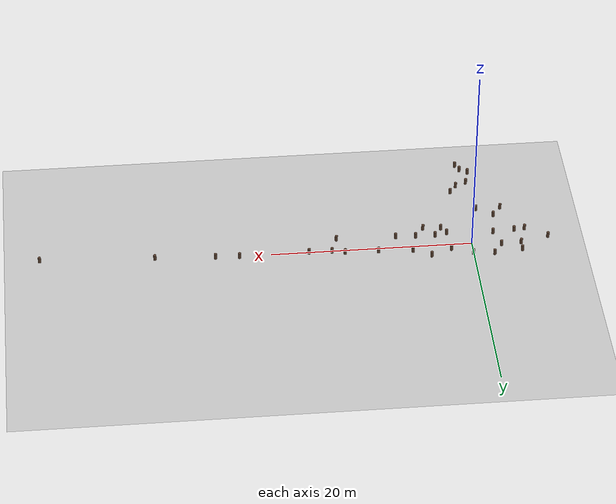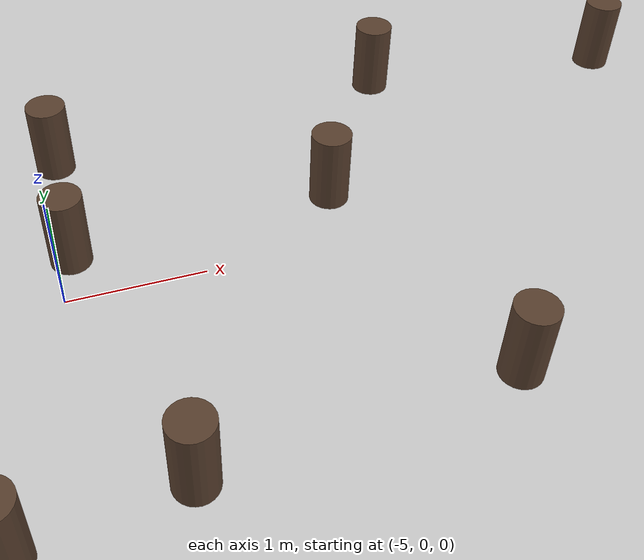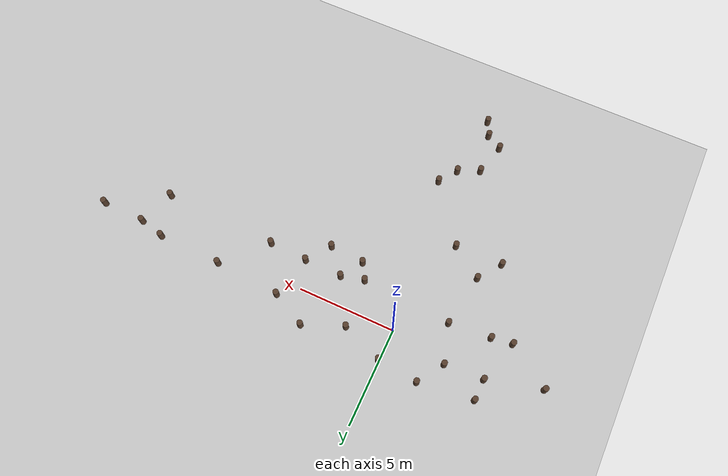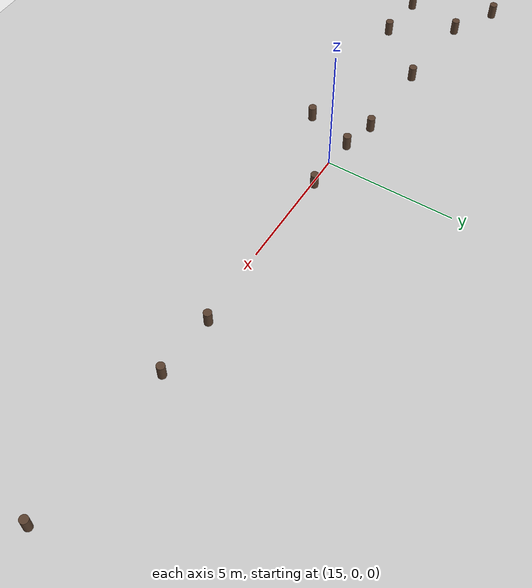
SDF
<?xml version="1.0"?>
<sdf version="1.6">
  <world name="orchard_world">
    <include>
      <uri>model://sun</uri>
    </include>

    <include>
      <uri>model://ground_plane</uri>
    </include>

    <!-- Trees: 36 includes of model://tree_trunk -->
    <include>
      <uri>model://tree_trunk</uri>
      <name>tree_0000</name>
      <pose>0.050984 -12.562007 0 0 0 0</pose>
    </include>
    <include>
      <uri>model://tree_trunk</uri>
      <name>tree_0001</name>
      <pose>-0.309361 -11.793268 0 0 0 0</pose>
    </include>
    <include>
      <uri>model://tree_trunk</uri>
      <name>tree_0002</name>
      <pose>-1.097318 -11.325704 0 0 0 0</pose>
    </include>
    <include>
      <uri>model://tree_trunk</uri>
      <name>tree_0003</name>
      <pose>-0.685122 -9.681372 0 0 0 0</pose>
    </include>
    <include>
      <uri>model://tree_trunk</uri>
      <name>tree_0004</name>
      <pose>0.416275 -9.167046 0 0 0 0</pose>
    </include>
    <include>
      <uri>model://tree_trunk</uri>
      <name>tree_0005</name>
      <pose>1.078704 -8.225414 0 0 0 0</pose>
    </include>
    <include>
      <uri>model://tree_trunk</uri>
      <name>tree_0006</name>
      <pose>-3.584132 -5.323152 0 0 0 0</pose>
    </include>
    <include>
      <uri>model://tree_trunk</uri>
      <name>tree_0007</name>
      <pose>-1.128745 -5.275709 0 0 0 0</pose>
    </include>
    <include>
      <uri>model://tree_trunk</uri>
      <name>tree_0008</name>
      <pose>-2.741403 -4.141347 0 0 0 0</pose>
    </include>
    <include>
      <uri>model://tree_trunk</uri>
      <name>tree_0009</name>
      <pose>4.574640 -2.629411 0 0 0 0</pose>
    </include>
    <include>
      <uri>model://tree_trunk</uri>
      <name>tree_0010</name>
      <pose>2.792306 -2.505768 0 0 0 0</pose>
    </include>
    <include>
      <uri>model://tree_trunk</uri>
      <name>tree_0011</name>
      <pose>-5.536636 -1.780362 0 0 0 0</pose>
    </include>
    <include>
      <uri>model://tree_trunk</uri>
      <name>tree_0012</name>
      <pose>2.294000 -1.701556 0 0 0 0</pose>
    </include>
    <include>
      <uri>model://tree_trunk</uri>
      <name>tree_0013</name>
      <pose>13.356965 -1.676074 0 0 0 0</pose>
    </include>
    <include>
      <uri>model://tree_trunk</uri>
      <name>tree_0014</name>
      <pose>-4.473728 -1.620586 0 0 0 0</pose>
    </include>
    <include>
      <uri>model://tree_trunk</uri>
      <name>tree_0015</name>
      <pose>7.430107 -1.514434 0 0 0 0</pose>
    </include>
    <include>
      <uri>model://tree_trunk</uri>
      <name>tree_0016</name>
      <pose>-2.323738 -1.441257 0 0 0 0</pose>
    </include>
    <include>
      <uri>model://tree_trunk</uri>
      <name>tree_0017</name>
      <pose>5.443738 -1.430930 0 0 0 0</pose>
    </include>
    <include>
      <uri>model://tree_trunk</uri>
      <name>tree_0018</name>
      <pose>3.486167 -1.400641 0 0 0 0</pose>
    </include>
    <include>
      <uri>model://tree_trunk</uri>
      <name>tree_0019</name>
      <pose>42.830143 -0.903327 0 0 0 0</pose>
    </include>
    <include>
      <uri>model://tree_trunk</uri>
      <name>tree_0020</name>
      <pose>-7.685363 -0.364939 0 0 0 0</pose>
    </include>
    <include>
      <uri>model://tree_trunk</uri>
      <name>tree_0021</name>
      <pose>31.484034 -0.272840 0 0 0 0</pose>
    </include>
    <include>
      <uri>model://tree_trunk</uri>
      <name>tree_0022</name>
      <pose>25.512535 0.059388 0 0 0 0</pose>
    </include>
    <include>
      <uri>model://tree_trunk</uri>
      <name>tree_0023</name>
      <pose>16.238300 0.106144 0 0 0 0</pose>
    </include>
    <include>
      <uri>model://tree_trunk</uri>
      <name>tree_0024</name>
      <pose>13.971466 0.169215 0 0 0 0</pose>
    </include>
    <include>
      <uri>model://tree_trunk</uri>
      <name>tree_0025</name>
      <pose>23.132961 0.184163 0 0 0 0</pose>
    </include>
    <include>
      <uri>model://tree_trunk</uri>
      <name>tree_0026</name>
      <pose>-4.894972 0.393250 0 0 0 0</pose>
    </include>
    <include>
      <uri>model://tree_trunk</uri>
      <name>tree_0027</name>
      <pose>12.683685 0.479121 0 0 0 0</pose>
    </include>
    <include>
      <uri>model://tree_trunk</uri>
      <name>tree_0028</name>
      <pose>-2.909245 0.511680 0 0 0 0</pose>
    </include>
    <include>
      <uri>model://tree_trunk</uri>
      <name>tree_0029</name>
      <pose>9.376393 0.542893 0 0 0 0</pose>
    </include>
    <include>
      <uri>model://tree_trunk</uri>
      <name>tree_0030</name>
      <pose>5.958008 0.762943 0 0 0 0</pose>
    </include>
    <include>
      <uri>model://tree_trunk</uri>
      <name>tree_0031</name>
      <pose>2.142253 0.810598 0 0 0 0</pose>
    </include>
    <include>
      <uri>model://tree_trunk</uri>
      <name>tree_0032</name>
      <pose>-4.865088 1.473430 0 0 0 0</pose>
    </include>
    <include>
      <uri>model://tree_trunk</uri>
      <name>tree_0033</name>
      <pose>0.048975 1.620776 0 0 0 0</pose>
    </include>
    <include>
      <uri>model://tree_trunk</uri>
      <name>tree_0034</name>
      <pose>4.199950 1.652455 0 0 0 0</pose>
    </include>
    <include>
      <uri>model://tree_trunk</uri>
      <name>tree_0035</name>
      <pose>-2.047320 1.839330 0 0 0 0</pose>
    </include>
  </world>
</sdf>

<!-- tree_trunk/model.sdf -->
<sdf version="1.6">
  <model name="tree_trunk">
    <static>true</static>
    <link name="link">
      <collision name="trunk_collision">
        <pose>0 0 0.30 0 0 0</pose>
        <geometry>
          <cylinder>
            <radius>0.15</radius>
            <length>0.60</length>
          </cylinder>
        </geometry>
      </collision>
      <visual name="trunk_visual">
        <pose>0 0 0.30 0 0 0</pose>
        <geometry>
          <cylinder>
            <radius>0.15</radius>
            <length>0.60</length>
          </cylinder>
        </geometry>
        <material>
          <ambient>0.25 0.18 0.12 1</ambient>
          <diffuse>0.35 0.25 0.18 1</diffuse>
        </material>
      </visual>
    </link>
  </model>
</sdf>
